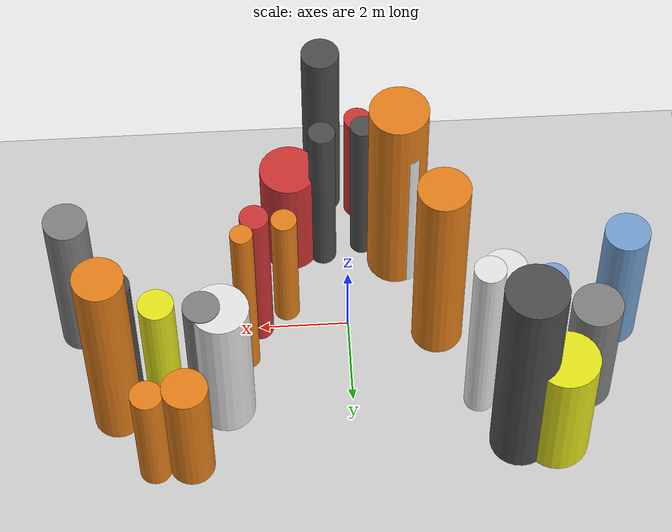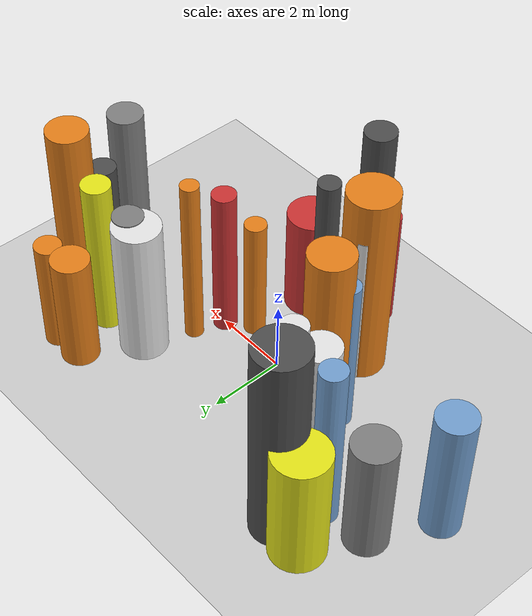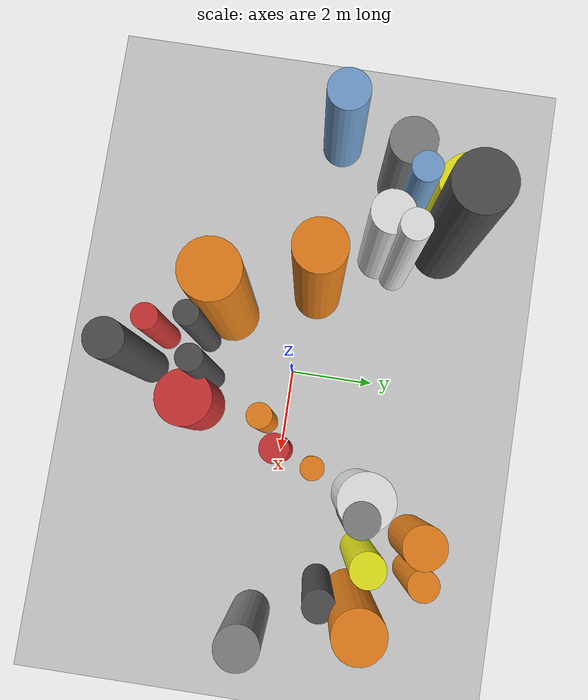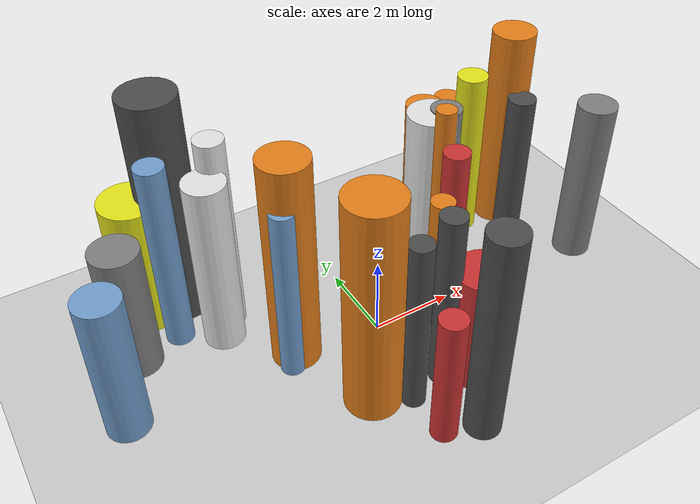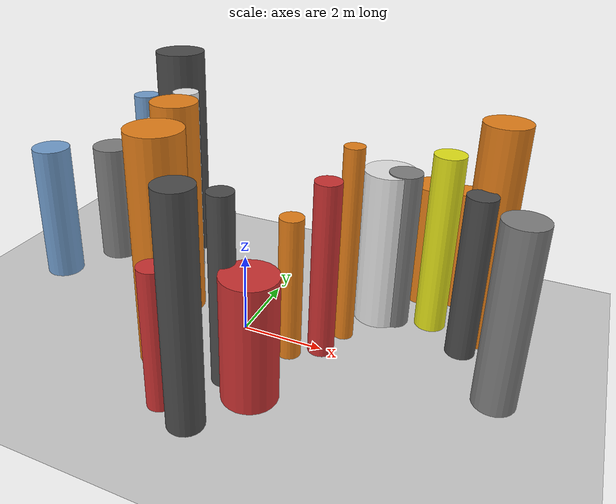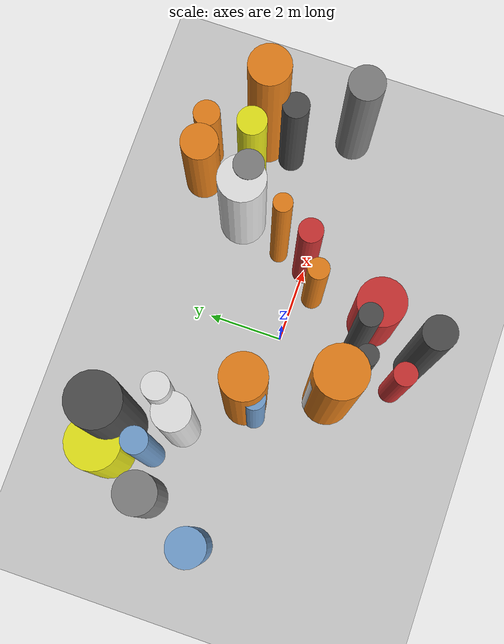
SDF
<?xml version='1.0'?>
<sdf version='1.6'>
  <world name='routeA_rl_v1__dense_recovery__rl_train__s_turn_multi_obstacle__000044'>
    <!-- Sun light -->
    <light name='sun' type='directional'>
      <cast_shadows>1</cast_shadows>
      <pose>0 0 10 0 0 0</pose>
      <diffuse>0.8 0.8 0.8 1</diffuse>
      <specular>0.2 0.2 0.2 1</specular>
      <attenuation>
        <range>1000</range>
        <constant>0.9</constant>
        <linear>0.01</linear>
        <quadratic>0.001</quadratic>
      </attenuation>
      <direction>-0.5 0.1 -0.9</direction>
    </light>

    <!-- Ground plane -->
    <model name='ground_plane'>
      <static>1</static>
      <link name='link'>
        <collision name='collision'>
          <geometry>
            <plane>
              <normal>0 0 1</normal>
              <size>100 100</size>
            </plane>
          </geometry>
          <surface>
            <contact>
              <collide_bitmask>65535</collide_bitmask>
              <ode/>
            </contact>
            <friction>
              <ode>
                <mu>100</mu>
                <mu2>50</mu2>
              </ode>
              <torsional><ode/></torsional>
            </friction>
            <bounce/>
          </surface>
          <max_contacts>10</max_contacts>
        </collision>
        <visual name='visual'>
          <cast_shadows>0</cast_shadows>
          <geometry>
            <plane>
              <normal>0 0 1</normal>
              <size>100 100</size>
            </plane>
          </geometry>
          <material>
            <script>
              <uri>file://media/materials/scripts/gazebo.material</uri>
              <n>Gazebo/Grey</n>
            </script>
          </material>
        </visual>
      </link>
    </model>

    <!-- Environment -->
    <magnetic_field>6e-06 2.3e-05 -4.2e-05</magnetic_field>
    <atmosphere type='adiabatic'/>
    <physics name='default_physics' default='0' type='ode'>
      <gravity>0 0 -9.8</gravity>
      <max_step_size>0.004</max_step_size>
      <real_time_factor>1</real_time_factor>
      <real_time_update_rate>250</real_time_update_rate>
    </physics>
    <scene>
      <ambient>0.4 0.4 0.4 1</ambient>
      <background>0.7 0.7 0.7 1</background>
      <shadows>1</shadows>
    </scene>
    <wind/>
    <spherical_coordinates>
      <surface_model>EARTH_WGS84</surface_model>
      <latitude_deg>0</latitude_deg>
      <longitude_deg>0</longitude_deg>
      <elevation>0</elevation>
      <heading_deg>0</heading_deg>
    </spherical_coordinates>

    <!-- ============ OBSTACLES (28) ============ -->
    <model name='s_turn_obs_0'>
      <static>1</static>
      <link name='link'>
        <visual name='visual'>
          <geometry>
            <cylinder>
              <radius>0.4998</radius>
              <length>3.6984</length>
            </cylinder>
          </geometry>
          <material>
            <script>
              <n>Gazebo/Blue</n>
              <uri>file://media/materials/scripts/gazebo.material</uri>
            </script>
            <ambient>0.447 0.624 0.812 1</ambient>
          </material>
        </visual>
        <collision name='collision'>
          <geometry>
            <cylinder>
              <radius>0.4998</radius>
              <length>3.6984</length>
            </cylinder>
          </geometry>
          <max_contacts>10</max_contacts>
          <surface>
            <contact><ode/></contact>
            <bounce/>
            <friction>
              <ode><mu>1</mu><mu2>1</mu2></ode>
              <torsional><ode/></torsional>
            </friction>
          </surface>
        </collision>
      </link>
      <pose>-6.0000 0.3866 1.8492 0 0 0.0000</pose>
    </model>

    <model name='s_turn_obs_1'>
      <static>1</static>
      <link name='link'>
        <visual name='visual'>
          <geometry>
            <cylinder>
              <radius>0.5542</radius>
              <length>3.3491</length>
            </cylinder>
          </geometry>
          <material>
            <script>
              <n>Gazebo/Grey</n>
              <uri>file://media/materials/scripts/gazebo.material</uri>
            </script>
            <ambient>0.5 0.5 0.5 1</ambient>
          </material>
        </visual>
        <collision name='collision'>
          <geometry>
            <cylinder>
              <radius>0.5542</radius>
              <length>3.3491</length>
            </cylinder>
          </geometry>
          <max_contacts>10</max_contacts>
          <surface>
            <contact><ode/></contact>
            <bounce/>
            <friction>
              <ode><mu>1</mu><mu2>1</mu2></ode>
              <torsional><ode/></torsional>
            </friction>
          </surface>
        </collision>
      </link>
      <pose>-5.2000 1.9767 1.6746 0 0 0.0000</pose>
    </model>

    <model name='s_turn_obs_2'>
      <static>1</static>
      <link name='link'>
        <visual name='visual'>
          <geometry>
            <cylinder>
              <radius>0.6991</radius>
              <length>3.4226</length>
            </cylinder>
          </geometry>
          <material>
            <script>
              <n>Gazebo/Yellow</n>
              <uri>file://media/materials/scripts/gazebo.material</uri>
            </script>
            <ambient>0.9 0.9 0.1 1</ambient>
          </material>
        </visual>
        <collision name='collision'>
          <geometry>
            <cylinder>
              <radius>0.6991</radius>
              <length>3.4226</length>
            </cylinder>
          </geometry>
          <max_contacts>10</max_contacts>
          <surface>
            <contact><ode/></contact>
            <bounce/>
            <friction>
              <ode><mu>1</mu><mu2>1</mu2></ode>
              <torsional><ode/></torsional>
            </friction>
          </surface>
        </collision>
      </link>
      <pose>-4.4000 3.3384 1.7113 0 0 0.0000</pose>
    </model>

    <model name='s_turn_obs_3'>
      <static>1</static>
      <link name='link'>
        <visual name='visual'>
          <geometry>
            <cylinder>
              <radius>0.6661</radius>
              <length>5.9253</length>
            </cylinder>
          </geometry>
          <material>
            <script>
              <n>Gazebo/DarkGrey</n>
              <uri>file://media/materials/scripts/gazebo.material</uri>
            </script>
            <ambient>0.3 0.3 0.3 1</ambient>
          </material>
        </visual>
        <collision name='collision'>
          <geometry>
            <cylinder>
              <radius>0.6661</radius>
              <length>5.9253</length>
            </cylinder>
          </geometry>
          <max_contacts>10</max_contacts>
          <surface>
            <contact><ode/></contact>
            <bounce/>
            <friction>
              <ode><mu>1</mu><mu2>1</mu2></ode>
              <torsional><ode/></torsional>
            </friction>
          </surface>
        </collision>
      </link>
      <pose>-3.6000 3.2440 2.9627 0 0 0.0000</pose>
    </model>

    <model name='s_turn_obs_4'>
      <static>1</static>
      <link name='link'>
        <visual name='visual'>
          <geometry>
            <cylinder>
              <radius>0.3406</radius>
              <length>5.1590</length>
            </cylinder>
          </geometry>
          <material>
            <script>
              <n>Gazebo/White</n>
              <uri>file://media/materials/scripts/gazebo.material</uri>
            </script>
            <ambient>0.9 0.9 0.9 1</ambient>
          </material>
        </visual>
        <collision name='collision'>
          <geometry>
            <cylinder>
              <radius>0.3406</radius>
              <length>5.1590</length>
            </cylinder>
          </geometry>
          <max_contacts>10</max_contacts>
          <surface>
            <contact><ode/></contact>
            <bounce/>
            <friction>
              <ode><mu>1</mu><mu2>1</mu2></ode>
              <torsional><ode/></torsional>
            </friction>
          </surface>
        </collision>
      </link>
      <pose>-2.8000 2.1502 2.5795 0 0 0.0000</pose>
    </model>

    <model name='s_turn_obs_5'>
      <static>1</static>
      <link name='link'>
        <visual name='visual'>
          <geometry>
            <cylinder>
              <radius>0.5737</radius>
              <length>5.4988</length>
            </cylinder>
          </geometry>
          <material>
            <script>
              <n>Gazebo/Orange</n>
              <uri>file://media/materials/scripts/gazebo.material</uri>
            </script>
            <ambient>0.9 0.5 0.1 1</ambient>
          </material>
        </visual>
        <collision name='collision'>
          <geometry>
            <cylinder>
              <radius>0.5737</radius>
              <length>5.4988</length>
            </cylinder>
          </geometry>
          <max_contacts>10</max_contacts>
          <surface>
            <contact><ode/></contact>
            <bounce/>
            <friction>
              <ode><mu>1</mu><mu2>1</mu2></ode>
              <torsional><ode/></torsional>
            </friction>
          </surface>
        </collision>
      </link>
      <pose>-2.0000 0.3237 2.7494 0 0 0.0000</pose>
    </model>

    <model name='s_turn_obs_6'>
      <static>1</static>
      <link name='link'>
        <visual name='visual'>
          <geometry>
            <cylinder>
              <radius>0.6514</radius>
              <length>5.5873</length>
            </cylinder>
          </geometry>
          <material>
            <script>
              <n>Gazebo/Orange</n>
              <uri>file://media/materials/scripts/gazebo.material</uri>
            </script>
            <ambient>0.9 0.5 0.1 1</ambient>
          </material>
        </visual>
        <collision name='collision'>
          <geometry>
            <cylinder>
              <radius>0.6514</radius>
              <length>5.5873</length>
            </cylinder>
          </geometry>
          <max_contacts>10</max_contacts>
          <surface>
            <contact><ode/></contact>
            <bounce/>
            <friction>
              <ode><mu>1</mu><mu2>1</mu2></ode>
              <torsional><ode/></torsional>
            </friction>
          </surface>
        </collision>
      </link>
      <pose>-1.2000 -1.7172 2.7936 0 0 0.0000</pose>
    </model>

    <model name='s_turn_obs_7'>
      <static>1</static>
      <link name='link'>
        <visual name='visual'>
          <geometry>
            <cylinder>
              <radius>0.3058</radius>
              <length>3.3701</length>
            </cylinder>
          </geometry>
          <material>
            <script>
              <n>Gazebo/Red</n>
              <uri>file://media/materials/scripts/gazebo.material</uri>
            </script>
            <ambient>0.8 0.2 0.2 1</ambient>
          </material>
        </visual>
        <collision name='collision'>
          <geometry>
            <cylinder>
              <radius>0.3058</radius>
              <length>3.3701</length>
            </cylinder>
          </geometry>
          <max_contacts>10</max_contacts>
          <surface>
            <contact><ode/></contact>
            <bounce/>
            <friction>
              <ode><mu>1</mu><mu2>1</mu2></ode>
              <torsional><ode/></torsional>
            </friction>
          </surface>
        </collision>
      </link>
      <pose>-0.4000 -3.2663 1.6851 0 0 0.0000</pose>
    </model>

    <model name='s_turn_obs_8'>
      <static>1</static>
      <link name='link'>
        <visual name='visual'>
          <geometry>
            <cylinder>
              <radius>0.4192</radius>
              <length>5.3610</length>
            </cylinder>
          </geometry>
          <material>
            <script>
              <n>Gazebo/DarkGrey</n>
              <uri>file://media/materials/scripts/gazebo.material</uri>
            </script>
            <ambient>0.3 0.3 0.3 1</ambient>
          </material>
        </visual>
        <collision name='collision'>
          <geometry>
            <cylinder>
              <radius>0.4192</radius>
              <length>5.3610</length>
            </cylinder>
          </geometry>
          <max_contacts>10</max_contacts>
          <surface>
            <contact><ode/></contact>
            <bounce/>
            <friction>
              <ode><mu>1</mu><mu2>1</mu2></ode>
              <torsional><ode/></torsional>
            </friction>
          </surface>
        </collision>
      </link>
      <pose>0.4000 -3.5542 2.6805 0 0 0.0000</pose>
    </model>

    <model name='s_turn_obs_9'>
      <static>1</static>
      <link name='link'>
        <visual name='visual'>
          <geometry>
            <cylinder>
              <radius>0.6454</radius>
              <length>3.0120</length>
            </cylinder>
          </geometry>
          <material>
            <script>
              <n>Gazebo/Red</n>
              <uri>file://media/materials/scripts/gazebo.material</uri>
            </script>
            <ambient>0.8 0.2 0.2 1</ambient>
          </material>
        </visual>
        <collision name='collision'>
          <geometry>
            <cylinder>
              <radius>0.6454</radius>
              <length>3.0120</length>
            </cylinder>
          </geometry>
          <max_contacts>10</max_contacts>
          <surface>
            <contact><ode/></contact>
            <bounce/>
            <friction>
              <ode><mu>1</mu><mu2>1</mu2></ode>
              <torsional><ode/></torsional>
            </friction>
          </surface>
        </collision>
      </link>
      <pose>1.2000 -2.2004 1.5060 0 0 0.0000</pose>
    </model>

    <model name='s_turn_obs_10'>
      <static>1</static>
      <link name='link'>
        <visual name='visual'>
          <geometry>
            <cylinder>
              <radius>0.3151</radius>
              <length>4.3579</length>
            </cylinder>
          </geometry>
          <material>
            <script>
              <n>Gazebo/Red</n>
              <uri>file://media/materials/scripts/gazebo.material</uri>
            </script>
            <ambient>0.8 0.2 0.2 1</ambient>
          </material>
        </visual>
        <collision name='collision'>
          <geometry>
            <cylinder>
              <radius>0.3151</radius>
              <length>4.3579</length>
            </cylinder>
          </geometry>
          <max_contacts>10</max_contacts>
          <surface>
            <contact><ode/></contact>
            <bounce/>
            <friction>
              <ode><mu>1</mu><mu2>1</mu2></ode>
              <torsional><ode/></torsional>
            </friction>
          </surface>
        </collision>
      </link>
      <pose>2.0000 -0.0032 2.1789 0 0 0.0000</pose>
    </model>

    <model name='s_turn_obs_11'>
      <static>1</static>
      <link name='link'>
        <visual name='visual'>
          <geometry>
            <cylinder>
              <radius>0.6262</radius>
              <length>4.0103</length>
            </cylinder>
          </geometry>
          <material>
            <script>
              <n>Gazebo/White</n>
              <uri>file://media/materials/scripts/gazebo.material</uri>
            </script>
            <ambient>0.9 0.9 0.9 1</ambient>
          </material>
        </visual>
        <collision name='collision'>
          <geometry>
            <cylinder>
              <radius>0.6262</radius>
              <length>4.0103</length>
            </cylinder>
          </geometry>
          <max_contacts>10</max_contacts>
          <surface>
            <contact><ode/></contact>
            <bounce/>
            <friction>
              <ode><mu>1</mu><mu2>1</mu2></ode>
              <torsional><ode/></torsional>
            </friction>
          </surface>
        </collision>
      </link>
      <pose>2.8000 2.0344 2.0051 0 0 0.0000</pose>
    </model>

    <model name='s_turn_obs_12'>
      <static>1</static>
      <link name='link'>
        <visual name='visual'>
          <geometry>
            <cylinder>
              <radius>0.4965</radius>
              <length>3.2425</length>
            </cylinder>
          </geometry>
          <material>
            <script>
              <n>Gazebo/Orange</n>
              <uri>file://media/materials/scripts/gazebo.material</uri>
            </script>
            <ambient>0.9 0.5 0.1 1</ambient>
          </material>
        </visual>
        <collision name='collision'>
          <geometry>
            <cylinder>
              <radius>0.4965</radius>
              <length>3.2425</length>
            </cylinder>
          </geometry>
          <max_contacts>10</max_contacts>
          <surface>
            <contact><ode/></contact>
            <bounce/>
            <friction>
              <ode><mu>1</mu><mu2>1</mu2></ode>
              <torsional><ode/></torsional>
            </friction>
          </surface>
        </collision>
      </link>
      <pose>3.6000 3.4600 1.6212 0 0 0.0000</pose>
    </model>

    <model name='s_turn_obs_13'>
      <static>1</static>
      <link name='link'>
        <visual name='visual'>
          <geometry>
            <cylinder>
              <radius>0.3532</radius>
              <length>3.1855</length>
            </cylinder>
          </geometry>
          <material>
            <script>
              <n>Gazebo/Orange</n>
              <uri>file://media/materials/scripts/gazebo.material</uri>
            </script>
            <ambient>0.9 0.5 0.1 1</ambient>
          </material>
        </visual>
        <collision name='collision'>
          <geometry>
            <cylinder>
              <radius>0.3532</radius>
              <length>3.1855</length>
            </cylinder>
          </geometry>
          <max_contacts>10</max_contacts>
          <surface>
            <contact><ode/></contact>
            <bounce/>
            <friction>
              <ode><mu>1</mu><mu2>1</mu2></ode>
              <torsional><ode/></torsional>
            </friction>
          </surface>
        </collision>
      </link>
      <pose>4.4000 3.5414 1.5928 0 0 0.0000</pose>
    </model>

    <model name='s_turn_obs_14'>
      <static>1</static>
      <link name='link'>
        <visual name='visual'>
          <geometry>
            <cylinder>
              <radius>0.5406</radius>
              <length>5.4841</length>
            </cylinder>
          </geometry>
          <material>
            <script>
              <n>Gazebo/Orange</n>
              <uri>file://media/materials/scripts/gazebo.material</uri>
            </script>
            <ambient>0.9 0.5 0.1 1</ambient>
          </material>
        </visual>
        <collision name='collision'>
          <geometry>
            <cylinder>
              <radius>0.5406</radius>
              <length>5.4841</length>
            </cylinder>
          </geometry>
          <max_contacts>10</max_contacts>
          <surface>
            <contact><ode/></contact>
            <bounce/>
            <friction>
              <ode><mu>1</mu><mu2>1</mu2></ode>
              <torsional><ode/></torsional>
            </friction>
          </surface>
        </collision>
      </link>
      <pose>5.2000 2.1382 2.7421 0 0 0.0000</pose>
    </model>

    <model name='s_turn_obs_15'>
      <static>1</static>
      <link name='link'>
        <visual name='visual'>
          <geometry>
            <cylinder>
              <radius>0.4768</radius>
              <length>4.3456</length>
            </cylinder>
          </geometry>
          <material>
            <script>
              <n>Gazebo/Grey</n>
              <uri>file://media/materials/scripts/gazebo.material</uri>
            </script>
            <ambient>0.5 0.5 0.5 1</ambient>
          </material>
        </visual>
        <collision name='collision'>
          <geometry>
            <cylinder>
              <radius>0.4768</radius>
              <length>4.3456</length>
            </cylinder>
          </geometry>
          <max_contacts>10</max_contacts>
          <surface>
            <contact><ode/></contact>
            <bounce/>
            <friction>
              <ode><mu>1</mu><mu2>1</mu2></ode>
              <torsional><ode/></torsional>
            </friction>
          </surface>
        </collision>
      </link>
      <pose>6.0000 -0.1307 2.1728 0 0 0.0000</pose>
    </model>

    <model name='s_turn_obs2_0'>
      <static>1</static>
      <link name='link'>
        <visual name='visual'>
          <geometry>
            <cylinder>
              <radius>0.2618</radius>
              <length>3.1179</length>
            </cylinder>
          </geometry>
          <material>
            <script>
              <n>Gazebo/Yellow</n>
              <uri>file://media/materials/scripts/gazebo.material</uri>
            </script>
            <ambient>0.9 0.9 0.1 1</ambient>
          </material>
        </visual>
        <collision name='collision'>
          <geometry>
            <cylinder>
              <radius>0.2618</radius>
              <length>3.1179</length>
            </cylinder>
          </geometry>
          <max_contacts>10</max_contacts>
          <surface>
            <contact><ode/></contact>
            <bounce/>
            <friction>
              <ode><mu>1</mu><mu2>1</mu2></ode>
              <torsional><ode/></torsional>
            </friction>
          </surface>
        </collision>
      </link>
      <pose>-5.0000 1.8002 1.5590 0 0 0.0000</pose>
    </model>

    <model name='s_turn_obs2_1'>
      <static>1</static>
      <link name='link'>
        <visual name='visual'>
          <geometry>
            <cylinder>
              <radius>0.3320</radius>
              <length>4.9082</length>
            </cylinder>
          </geometry>
          <material>
            <script>
              <n>Gazebo/Blue</n>
              <uri>file://media/materials/scripts/gazebo.material</uri>
            </script>
            <ambient>0.447 0.624 0.812 1</ambient>
          </material>
        </visual>
        <collision name='collision'>
          <geometry>
            <cylinder>
              <radius>0.3320</radius>
              <length>4.9082</length>
            </cylinder>
          </geometry>
          <max_contacts>10</max_contacts>
          <surface>
            <contact><ode/></contact>
            <bounce/>
            <friction>
              <ode><mu>1</mu><mu2>1</mu2></ode>
              <torsional><ode/></torsional>
            </friction>
          </surface>
        </collision>
      </link>
      <pose>-4.0909 2.2228 2.4541 0 0 0.0000</pose>
    </model>

    <model name='s_turn_obs2_2'>
      <static>1</static>
      <link name='link'>
        <visual name='visual'>
          <geometry>
            <cylinder>
              <radius>0.4852</radius>
              <length>4.4961</length>
            </cylinder>
          </geometry>
          <material>
            <script>
              <n>Gazebo/White</n>
              <uri>file://media/materials/scripts/gazebo.material</uri>
            </script>
            <ambient>0.9 0.9 0.9 1</ambient>
          </material>
        </visual>
        <collision name='collision'>
          <geometry>
            <cylinder>
              <radius>0.4852</radius>
              <length>4.4961</length>
            </cylinder>
          </geometry>
          <max_contacts>10</max_contacts>
          <surface>
            <contact><ode/></contact>
            <bounce/>
            <friction>
              <ode><mu>1</mu><mu2>1</mu2></ode>
              <torsional><ode/></torsional>
            </friction>
          </surface>
        </collision>
      </link>
      <pose>-3.1818 1.6915 2.2481 0 0 0.0000</pose>
    </model>

    <model name='s_turn_obs2_3'>
      <static>1</static>
      <link name='link'>
        <visual name='visual'>
          <geometry>
            <cylinder>
              <radius>0.2821</radius>
              <length>4.5043</length>
            </cylinder>
          </geometry>
          <material>
            <script>
              <n>Gazebo/Blue</n>
              <uri>file://media/materials/scripts/gazebo.material</uri>
            </script>
            <ambient>0.447 0.624 0.812 1</ambient>
          </material>
        </visual>
        <collision name='collision'>
          <geometry>
            <cylinder>
              <radius>0.2821</radius>
              <length>4.5043</length>
            </cylinder>
          </geometry>
          <max_contacts>10</max_contacts>
          <surface>
            <contact><ode/></contact>
            <bounce/>
            <friction>
              <ode><mu>1</mu><mu2>1</mu2></ode>
              <torsional><ode/></torsional>
            </friction>
          </surface>
        </collision>
      </link>
      <pose>-2.2727 -0.0211 2.2522 0 0 0.0000</pose>
    </model>

    <model name='s_turn_obs2_4'>
      <static>1</static>
      <link name='link'>
        <visual name='visual'>
          <geometry>
            <cylinder>
              <radius>0.3305</radius>
              <length>4.4829</length>
            </cylinder>
          </geometry>
          <material>
            <script>
              <n>Gazebo/White</n>
              <uri>file://media/materials/scripts/gazebo.material</uri>
            </script>
            <ambient>0.9 0.9 0.9 1</ambient>
          </material>
        </visual>
        <collision name='collision'>
          <geometry>
            <cylinder>
              <radius>0.3305</radius>
              <length>4.4829</length>
            </cylinder>
          </geometry>
          <max_contacts>10</max_contacts>
          <surface>
            <contact><ode/></contact>
            <bounce/>
            <friction>
              <ode><mu>1</mu><mu2>1</mu2></ode>
              <torsional><ode/></torsional>
            </friction>
          </surface>
        </collision>
      </link>
      <pose>-1.3636 -1.4293 2.2415 0 0 0.0000</pose>
    </model>

    <model name='s_turn_obs2_5'>
      <static>1</static>
      <link name='link'>
        <visual name='visual'>
          <geometry>
            <cylinder>
              <radius>0.2762</radius>
              <length>4.4728</length>
            </cylinder>
          </geometry>
          <material>
            <script>
              <n>Gazebo/DarkGrey</n>
              <uri>file://media/materials/scripts/gazebo.material</uri>
            </script>
            <ambient>0.3 0.3 0.3 1</ambient>
          </material>
        </visual>
        <collision name='collision'>
          <geometry>
            <cylinder>
              <radius>0.2762</radius>
              <length>4.4728</length>
            </cylinder>
          </geometry>
          <max_contacts>10</max_contacts>
          <surface>
            <contact><ode/></contact>
            <bounce/>
            <friction>
              <ode><mu>1</mu><mu2>1</mu2></ode>
              <torsional><ode/></torsional>
            </friction>
          </surface>
        </collision>
      </link>
      <pose>-0.4545 -2.2001 2.2364 0 0 0.0000</pose>
    </model>

    <model name='s_turn_obs2_6'>
      <static>1</static>
      <link name='link'>
        <visual name='visual'>
          <geometry>
            <cylinder>
              <radius>0.2957</radius>
              <length>4.6069</length>
            </cylinder>
          </geometry>
          <material>
            <script>
              <n>Gazebo/DarkGrey</n>
              <uri>file://media/materials/scripts/gazebo.material</uri>
            </script>
            <ambient>0.3 0.3 0.3 1</ambient>
          </material>
        </visual>
        <collision name='collision'>
          <geometry>
            <cylinder>
              <radius>0.2957</radius>
              <length>4.6069</length>
            </cylinder>
          </geometry>
          <max_contacts>10</max_contacts>
          <surface>
            <contact><ode/></contact>
            <bounce/>
            <friction>
              <ode><mu>1</mu><mu2>1</mu2></ode>
              <torsional><ode/></torsional>
            </friction>
          </surface>
        </collision>
      </link>
      <pose>0.4545 -1.9710 2.3035 0 0 0.0000</pose>
    </model>

    <model name='s_turn_obs2_7'>
      <static>1</static>
      <link name='link'>
        <visual name='visual'>
          <geometry>
            <cylinder>
              <radius>0.2844</radius>
              <length>3.5689</length>
            </cylinder>
          </geometry>
          <material>
            <script>
              <n>Gazebo/Orange</n>
              <uri>file://media/materials/scripts/gazebo.material</uri>
            </script>
            <ambient>0.9 0.5 0.1 1</ambient>
          </material>
        </visual>
        <collision name='collision'>
          <geometry>
            <cylinder>
              <radius>0.2844</radius>
              <length>3.5689</length>
            </cylinder>
          </geometry>
          <max_contacts>10</max_contacts>
          <surface>
            <contact><ode/></contact>
            <bounce/>
            <friction>
              <ode><mu>1</mu><mu2>1</mu2></ode>
              <torsional><ode/></torsional>
            </friction>
          </surface>
        </collision>
      </link>
      <pose>1.3636 -0.4523 1.7844 0 0 0.0000</pose>
    </model>

    <model name='s_turn_obs2_8'>
      <static>1</static>
      <link name='link'>
        <visual name='visual'>
          <geometry>
            <cylinder>
              <radius>0.2436</radius>
              <length>4.9209</length>
            </cylinder>
          </geometry>
          <material>
            <script>
              <n>Gazebo/Orange</n>
              <uri>file://media/materials/scripts/gazebo.material</uri>
            </script>
            <ambient>0.9 0.5 0.1 1</ambient>
          </material>
        </visual>
        <collision name='collision'>
          <geometry>
            <cylinder>
              <radius>0.2436</radius>
              <length>4.9209</length>
            </cylinder>
          </geometry>
          <max_contacts>10</max_contacts>
          <surface>
            <contact><ode/></contact>
            <bounce/>
            <friction>
              <ode><mu>1</mu><mu2>1</mu2></ode>
              <torsional><ode/></torsional>
            </friction>
          </surface>
        </collision>
      </link>
      <pose>2.2727 0.8137 2.4604 0 0 0.0000</pose>
    </model>

    <model name='s_turn_obs2_9'>
      <static>1</static>
      <link name='link'>
        <visual name='visual'>
          <geometry>
            <cylinder>
              <radius>0.3981</radius>
              <length>4.0343</length>
            </cylinder>
          </geometry>
          <material>
            <script>
              <n>Gazebo/Grey</n>
              <uri>file://media/materials/scripts/gazebo.material</uri>
            </script>
            <ambient>0.5 0.5 0.5 1</ambient>
          </material>
        </visual>
        <collision name='collision'>
          <geometry>
            <cylinder>
              <radius>0.3981</radius>
              <length>4.0343</length>
            </cylinder>
          </geometry>
          <max_contacts>10</max_contacts>
          <surface>
            <contact><ode/></contact>
            <bounce/>
            <friction>
              <ode><mu>1</mu><mu2>1</mu2></ode>
              <torsional><ode/></torsional>
            </friction>
          </surface>
        </collision>
      </link>
      <pose>3.1818 1.9846 2.0171 0 0 0.0000</pose>
    </model>

    <model name='s_turn_obs2_10'>
      <static>1</static>
      <link name='link'>
        <visual name='visual'>
          <geometry>
            <cylinder>
              <radius>0.3798</radius>
              <length>4.5522</length>
            </cylinder>
          </geometry>
          <material>
            <script>
              <n>Gazebo/Yellow</n>
              <uri>file://media/materials/scripts/gazebo.material</uri>
            </script>
            <ambient>0.9 0.9 0.1 1</ambient>
          </material>
        </visual>
        <collision name='collision'>
          <geometry>
            <cylinder>
              <radius>0.3798</radius>
              <length>4.5522</length>
            </cylinder>
          </geometry>
          <max_contacts>10</max_contacts>
          <surface>
            <contact><ode/></contact>
            <bounce/>
            <friction>
              <ode><mu>1</mu><mu2>1</mu2></ode>
              <torsional><ode/></torsional>
            </friction>
          </surface>
        </collision>
      </link>
      <pose>4.0909 2.2069 2.2761 0 0 0.0000</pose>
    </model>

    <model name='s_turn_obs2_11'>
      <static>1</static>
      <link name='link'>
        <visual name='visual'>
          <geometry>
            <cylinder>
              <radius>0.3502</radius>
              <length>4.0503</length>
            </cylinder>
          </geometry>
          <material>
            <script>
              <n>Gazebo/DarkGrey</n>
              <uri>file://media/materials/scripts/gazebo.material</uri>
            </script>
            <ambient>0.3 0.3 0.3 1</ambient>
          </material>
        </visual>
        <collision name='collision'>
          <geometry>
            <cylinder>
              <radius>0.3502</radius>
              <length>4.0503</length>
            </cylinder>
          </geometry>
          <max_contacts>10</max_contacts>
          <surface>
            <contact><ode/></contact>
            <bounce/>
            <friction>
              <ode><mu>1</mu><mu2>1</mu2></ode>
              <torsional><ode/></torsional>
            </friction>
          </surface>
        </collision>
      </link>
      <pose>5.0000 1.3630 2.0252 0 0 0.0000</pose>
    </model>

    <!-- GUI camera -->
    <gui fullscreen='0'>
      <camera name='user_camera'>
        <pose>-15 0 18 0 0.85 0.15</pose>
        <view_controller>orbit</view_controller>
        <projection_type>perspective</projection_type>
      </camera>
    </gui>
  </world>
</sdf>
